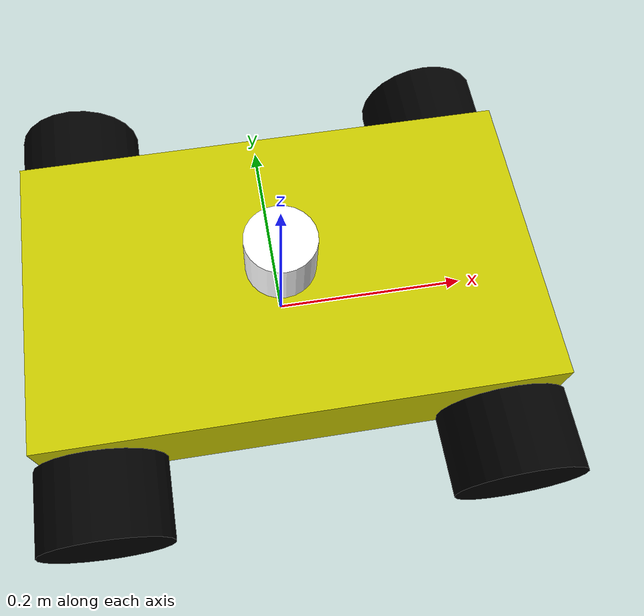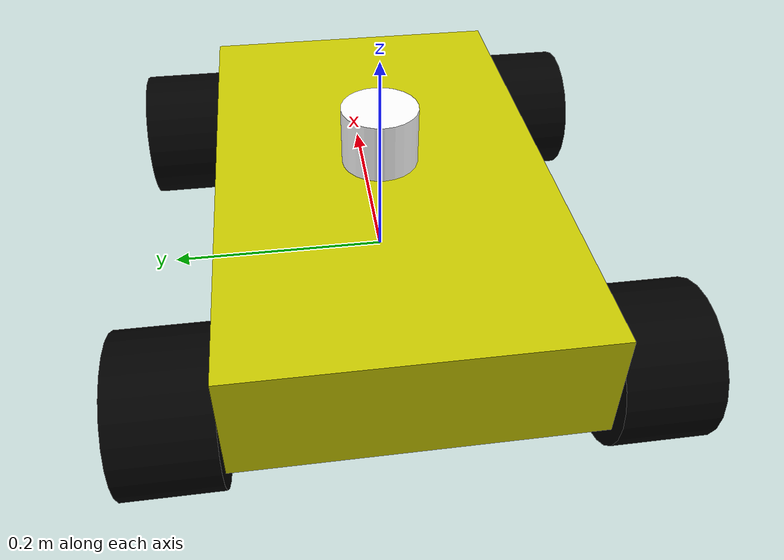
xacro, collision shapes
<?xml version="1.0"?>
<robot xmlns:xacro="https://www.ros.org/wiki/xacro" name="mecanum" xmlns:ignition="http://gazebosim.org/schema">

<xacro:property name="radius" value="0.065" />
<xacro:property name="length" value="0.08" />
<xacro:property name="box_length" value="0.5" />
<xacro:property name="box_width" value="0.3" />
<xacro:property name="box_height" value="0.1" />

<material name="blue">
 <color rgba="0 0 0.8 1" />
</material>
<material name="yellow">
 <color rgba="0.8 0.8 0 1.0" />
</material>
<material name="black">
 <color rgba="0 0 0 1" />
</material>
<material name="white">
 <color rgba="1 1 1 1" />
</material>

<link name="front_right_wheel">
    <visual>
        <origin xyz="0 0 0" rpy="1.57075 0 0"  />
        <geometry>
            <mesh filename="file://$(find mecanum_simulation)/meshes/Mecanum_jo.stl" scale="0.0015 0.0015 0.0015" />
        </geometry>
        <material name="black" />
    </visual>
    <collision>
        <origin xyz="0 0 0" rpy="1.57075 0 0"  />
        <geometry>
            <cylinder length="${length}" radius="${radius}" />
        </geometry>
    </collision>

    <inertial>
        <mass value="0.3"/>
        <inertia ixx="1e-3" ixy="0" ixz="0" iyy="1e-3" iyz="0" izz="1e-3" />
    </inertial>
</link>
<joint name="front_right_wheel_joint" type="continuous">
    <parent link="base_link" />
    <child link="front_right_wheel" />
    <origin xyz="0.2 -${box_width/2+length/2} -0.03" />
    <axis xyz="0 1 0" />
</joint>

<link name="front_left_wheel">
    <visual>
        <origin xyz="0 0 0" rpy="1.57075 0 0"  />
        <geometry>
            <mesh filename="file://$(find mecanum_simulation)/meshes/Mecanum_jo.stl" scale="0.0015 0.0015 0.0015" />
        </geometry>
        <material name="black" />
    </visual>
    <collision>
        <origin xyz="0 0 0" rpy="1.57075 0 0"  />
        <geometry>
            <cylinder length="${length}" radius="${radius}" />
        </geometry>
    </collision>

    <inertial>
        <mass value="0.3"/>
        <inertia ixx="1e-3" ixy="0" ixz="0" iyy="1e-3" iyz="0" izz="1e-3" />
    </inertial>
</link>
<joint name="front_left_wheel_joint" type="continuous">
    <parent link="base_link" />
    <child link="front_left_wheel" />
    <origin xyz="0.2 ${box_width/2+length/2} -0.03" />
    <axis xyz="0 1 0" />
</joint>

<link name="rear_left_wheel">
    <visual>
        <origin xyz="0 0 0" rpy="1.57075 0 0"  />
        <geometry>
            <mesh filename="file://$(find mecanum_simulation)/meshes/Mecanum_jo.stl" scale="0.0015 0.0015 0.0015" />
        </geometry>
        <material name="black" />
    </visual>
    <collision>
        <origin xyz="0 0 0" rpy="1.57075 0 0"  />
        <geometry>
            <cylinder length="${length}" radius="${radius}" />
        </geometry>
    </collision>

    <inertial>
        <mass value="0.3"/>
        <inertia ixx="1e-3" ixy="0" ixz="0" iyy="1e-3" iyz="0" izz="1e-3" />
    </inertial>
</link>
<joint name="rear_left_wheel_joint" type="continuous">
    <parent link="base_link" />
    <child link="rear_left_wheel" />
    <origin xyz="-0.2 ${box_width/2+length/2} -0.03" />
    <axis xyz="0 1 0" />
</joint>

<link name="rear_right_wheel">
    <visual>
        <origin xyz="0 0 0" rpy="1.57075 0 0"  />
        <geometry>
            <mesh filename="file://$(find mecanum_simulation)/meshes/Mecanum_jo.stl" scale="0.0015 0.0015 0.0015" />
        </geometry>
        <material name="black" />
    </visual>
    <collision>
        <origin xyz="0 0 0" rpy="1.57075 0 0"  />
        <geometry>
            <cylinder length="${length}" radius="${radius}" />
        </geometry>

    </collision>
    <inertial>
        <mass value="0.3"/>
        <inertia ixx="1e-3" ixy="0" ixz="0" iyy="1e-3" iyz="0" izz="1e-3" />
    </inertial>
</link>
<joint name="rear_right_wheel_joint" type="continuous">
    <parent link="base_link" />
    <child link="rear_right_wheel" />
    <origin xyz="-0.2 -${box_width/2+length/2} -0.03" />
    <axis xyz="0 1 0" />
</joint>

<link name="base_link">
    <visual>
    <origin xyz="0 0 0" rpy="0 0 0"  />
        <geometry>
            <box size="${box_length} ${box_width} ${box_height}" />
        </geometry>
        <material name="yellow" />
    </visual>
    <collision>
        <origin xyz="0 0 0" rpy="0 0 0"  />
        <geometry>
            <box size="${box_length} ${box_width} ${box_height}" />
        </geometry>
    </collision>
    <inertial>
        <origin xyz="-0.02 0 0.035" rpy="0 0 0" />
        <mass value="15.0" />
        <inertia ixx="0.0625" ixy="0" ixz="0" iyy="0.2125" iyz="0" izz="0.25" />
    </inertial>
</link>

<link name="base_footprint" />

<joint name="base_joint" type="fixed">
    <parent link="base_footprint" />
    <child link="base_link" />
    <origin xyz="0 0 0.05" rpy="0 0 0" />
</joint>

<link name="base_scan">
    <visual>
        <origin xyz="0 0 -0.05" rpy="0 0 3.14"  />
        <geometry>
            <mesh filename="file://$(find mecanum_simulation)/meshes/sensors/hokuyo_ust10.stl" scale="1 1 1" />
        </geometry>
        <material name="white" />
    </visual>
    <collision>
        <origin xyz="0 0 -0.0215" rpy="0 0 0" />
        <geometry>
            <cylinder length="0.055" radius="0.035" />
        </geometry>
    </collision>
    <inertial>
        <mass value="0.178"/>
        <origin xyz="0 0 0" />
        <inertia ixx="1.1e-04" ixy="-1.56e-04" ixz="-3.12e-04" iyy="1.85e-04" iyz="-2.23e-04" izz="2.21e-04" />
    </inertial>
</link>

<joint name="scan_joint" type="fixed">
    <parent link="base_link" />
    <child link="base_scan" />
    <origin xyz="0 0 0.1" rpy="0 0 3.1415" />
</joint>

<gazebo reference="base_scan">
<material>Gazebo/Blue</material>
    <sensor name="gpu_sensor" type="gpu_lidar">
        <topic>scan</topic>
        <update_rate>10</update_rate>
        <lidar>
            <scan>
                <horizontal>
                    <samples>1200</samples>
                    <resolution>0.72</resolution>
                    <min_angle>-4.71</min_angle>
                    <max_angle>4.71</max_angle>
                </horizontal>
            </scan>
            <range>
                <min>0.120</min>
                <max>10</max>
                <resolution>0.015</resolution>
            </range>
            <noise>
                <type>gaussian</type>
                <mean>0.0</mean>
                <stddev>0.02</stddev>
            </noise>
            <frame_id>base_footprint</frame_id>
        </lidar>
        <always_on>1</always_on>
        <visualize>true</visualize>
        <plugin
            filename="ignition-gazebo-sensors-system"
            name="ignition::gazebo::systems::Lidar">

      <render_engine>ogre2</render_engine>
    </plugin>
    </sensor>
</gazebo>
<gazebo>
    <plugin
      filename="libignition-gazebo-mecanum-drive-system.so"
      name="ignition::gazebo::systems::MecanumDrive">
      <!-- Topic for the command input -->
      <topic>/cmd_vel</topic>

      <!-- Wheel joints -->
      <front_left_joint>front_left_wheel_joint</front_left_joint>
      <front_right_joint>front_right_wheel_joint</front_right_joint>
      <back_left_joint>rear_left_wheel_joint</back_left_joint>
      <back_right_joint>rear_right_wheel_joint</back_right_joint>

      <!-- Wheel parameters -->
      <wheel_separation>0.3</wheel_separation>
      <wheelbase>0.3</wheelbase>
      <wheel_radius>0.1</wheel_radius>

      <!-- Control gains and limits (optional) -->
      <min_acceleration>-5</min_acceleration>
      <max_acceleration>5</max_acceleration>

      <!-- Other parameters (optional) -->
      <odom_topic>odom</odom_topic>
      <tf_topic>tf</tf_topic>
      <frame_id>odom</frame_id>
      <child_frame_id>base_footprint</child_frame_id>
      <odom_publish_frequency>30</odom_publish_frequency>
      <publish_odom>true</publish_odom>
      <publish_odom_tf>true</publish_odom_tf>
    </plugin>

    <plugin name="ignition::gazebo::systems::OdometryPublisher" filename="libignition-gazebo-odometry-publisher-system">
      <odom_topic>odom</odom_topic>
      <odom_frame>odom</odom_frame>
      <robot_base_frame>base_footprint</robot_base_frame>
      <publish_tf>true</publish_tf>
      <tf_topic>tf</tf_topic>
      <odom_publish_frequency>30</odom_publish_frequency>
      <xyz_offset>0 0 0</xyz_offset>
      <rpy_offset>0 0 0</rpy_offset>
    </plugin>

    <plugin
        filename="libignition-gazebo-joint-state-publisher-system"
        name="ignition::gazebo::systems::JointStatePublisher">
        <topic>joint_states</topic>
        <joint_name>front_left_wheel_joint</joint_name>
        <joint_name>front_right_wheel_joint</joint_name>
        <joint_name>rear_left_wheel_joint</joint_name>
        <joint_name>rear_right_wheel_joint</joint_name>
    </plugin>

</gazebo>
<gazebo reference="front_right_wheel">
    <collision>
        <surface>
            <friction>
                <ode>
                    <mu1>1.5</mu1>
                    <mu2>0</mu2>
                    <fdir1 ignition:expressed_in="base_footprint">1 1 0</fdir1>
                </ode>
            </friction>
        </surface>
    </collision>
    <kp>500000.0</kp>
    <kd>100.0</kd>
    <maxVel>0.5</maxVel>
    <minDepth>0.001</minDepth>

    <material>Gazebo/Black</material>
</gazebo>
<gazebo reference="front_left_wheel">
    <collision>
        <surface>
            <friction>
                <ode>
                    <mu1>1.5</mu1>
                    <mu2>0</mu2>
                    <fdir1 ignition:expressed_in="base_footprint">1 -1 0</fdir1>
                </ode>
            </friction>
        </surface>
    </collision>
    <kp>500000.0</kp>
    <kd>100.0</kd>
    <maxVel>0.5</maxVel>
    <minDepth>0.001</minDepth>

    <material>Gazebo/Black</material>
  </gazebo>
  <gazebo reference="rear_right_wheel">
    <collision>
        <surface>
            <friction>
                <ode>
                    <mu1>1.5</mu1>
                    <mu2>0</mu2>
                    <fdir1 ignition:expressed_in="base_footprint">1 -1 0</fdir1>
                </ode>
            </friction>
        </surface>
    </collision>
    <kp>500000.0</kp>
    <kd>100.0</kd>
    <maxVel>0.5</maxVel>
    <minDepth>0.001</minDepth>

    <material>Gazebo/Black</material>
  </gazebo>
  <gazebo reference="rear_left_wheel">
    <collision>
        <surface>
            <friction>
                <ode>
                    <mu1>1.5</mu1>
                    <mu2>0</mu2>
                    <fdir1 ignition:expressed_in="base_footprint">1 1 0</fdir1>
                </ode>
            </friction>
        </surface>
    </collision>
    <kp>500000.0</kp>
    <kd>100.0</kd>
    <maxVel>0.5</maxVel>
    <minDepth>0.001</minDepth>

    <material>Gazebo/Black</material>
  </gazebo>
  <gazebo reference="base_link">
    <material>Gazebo/Yellow</material>
    <mu1>0.000002</mu1>
    <mu2>0.000002</mu2>
  </gazebo>

</robot>
